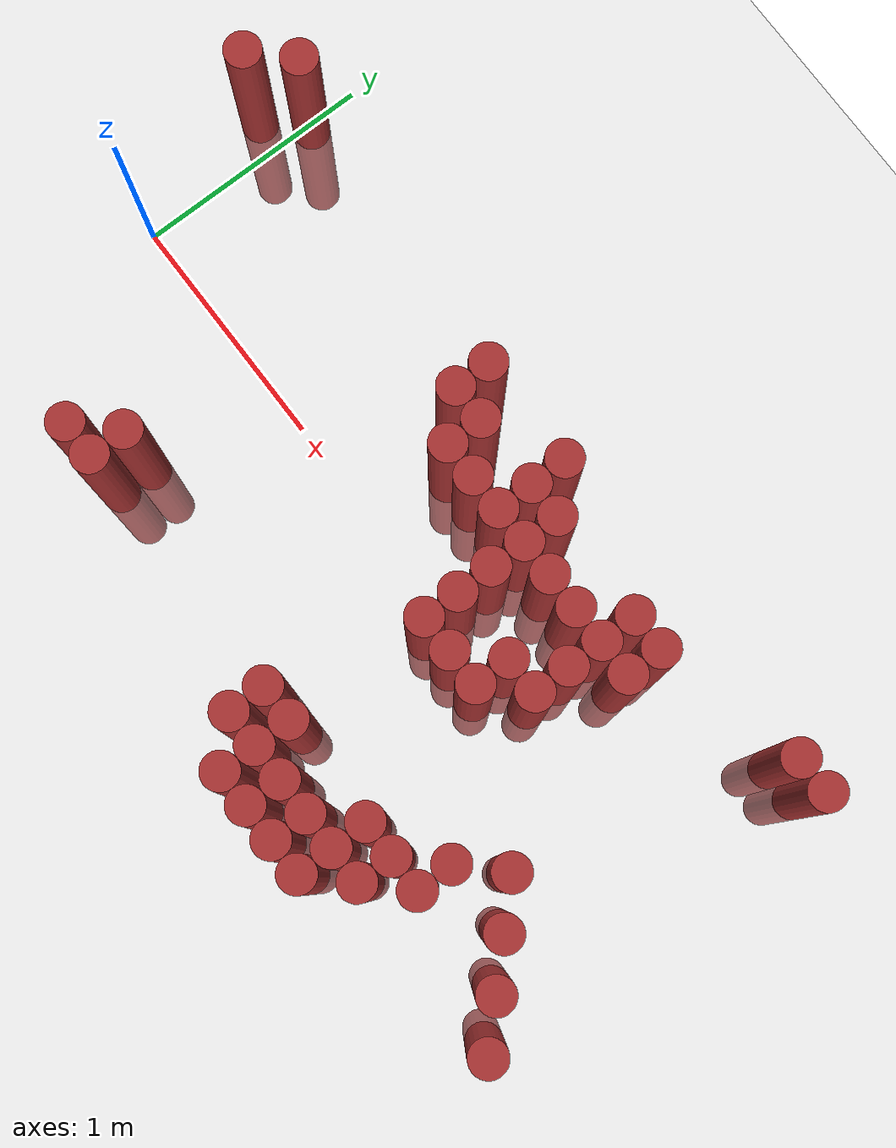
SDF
<sdf version="1.6">
 <world name="default">
  <model name="ground_plane">
   <static>1</static>
   <link name="link">
    <collision name="collision">
     <geometry><plane><normal>0 0 1</normal><size>100 100</size></plane></geometry>
     <surface><friction><ode><mu>100</mu><mu2>50</mu2></ode></friction></surface>
    </collision>
    <visual name="visual">
     <cast_shadows>0</cast_shadows>
     <geometry><plane><normal>0 0 1</normal><size>100 100</size></plane></geometry>
     <material>
      <script><uri>file://media/materials/scripts/gazebo.material</uri><name>Gazebo/Grey</name></script>
     </material>
    </visual>
   </link>
  </model>
  <model name="unit_cylinder_378">
   <static>1</static>
   <pose>-0.125000 0.625000 0.000000 0.000000 0.000000 0.000000</pose>
   <link name="link">
    <inertial>
     <mass>1</mass>
     <inertia><ixx>0.145833</ixx><ixy>0</ixy><ixz>0</ixz><iyy>0.145833</iyy><iyz>0</iyz><izz>0.125</izz></inertia>
    </inertial>
    <collision name="collision">
     <geometry><cylinder><radius>0.075000</radius><length>1.5</length></cylinder></geometry>
    </collision>
    <visual name="visual">
     <geometry><cylinder><radius>0.075000</radius><length>1.5</length></cylinder></geometry>
     <material>
      <ambient>0.648000 0.192000 0.192000 1</ambient>
      <diffuse>0.648000 0.192000 0.192000 1</diffuse>
     </material>
     <material>
      <script><name>Gazebo/Grey</name><uri>file://media/materials/scripts/gazebo.material</uri></script>
     </material>
    </visual>
   </link>
  </model>
  <model name="unit_cylinder_382">
   <static>1</static>
   <pose>0.025000 0.775000 0.000000 0.000000 0.000000 0.000000</pose>
   <link name="link">
    <inertial>
     <mass>1</mass>
     <inertia><ixx>0.145833</ixx><ixy>0</ixy><ixz>0</ixz><iyy>0.145833</iyy><iyz>0</iyz><izz>0.125</izz></inertia>
    </inertial>
    <collision name="collision">
     <geometry><cylinder><radius>0.075000</radius><length>1.5</length></cylinder></geometry>
    </collision>
    <visual name="visual">
     <geometry><cylinder><radius>0.075000</radius><length>1.5</length></cylinder></geometry>
     <material>
      <ambient>0.648000 0.192000 0.192000 1</ambient>
      <diffuse>0.648000 0.192000 0.192000 1</diffuse>
     </material>
     <material>
      <script><name>Gazebo/Grey</name><uri>file://media/materials/scripts/gazebo.material</uri></script>
     </material>
    </visual>
   </link>
  </model>
  <model name="unit_cylinder_386">
   <static>1</static>
   <pose>0.625000 -0.725000 0.000000 0.000000 0.000000 0.000000</pose>
   <link name="link">
    <inertial>
     <mass>1</mass>
     <inertia><ixx>0.145833</ixx><ixy>0</ixy><ixz>0</ixz><iyy>0.145833</iyy><iyz>0</iyz><izz>0.125</izz></inertia>
    </inertial>
    <collision name="collision">
     <geometry><cylinder><radius>0.075000</radius><length>1.5</length></cylinder></geometry>
    </collision>
    <visual name="visual">
     <geometry><cylinder><radius>0.075000</radius><length>1.5</length></cylinder></geometry>
     <material>
      <ambient>0.648000 0.192000 0.192000 1</ambient>
      <diffuse>0.648000 0.192000 0.192000 1</diffuse>
     </material>
     <material>
      <script><name>Gazebo/Grey</name><uri>file://media/materials/scripts/gazebo.material</uri></script>
     </material>
    </visual>
   </link>
  </model>
  <model name="unit_cylinder_387">
   <static>1</static>
   <pose>0.775000 -0.725000 0.000000 0.000000 0.000000 0.000000</pose>
   <link name="link">
    <inertial>
     <mass>1</mass>
     <inertia><ixx>0.145833</ixx><ixy>0</ixy><ixz>0</ixz><iyy>0.145833</iyy><iyz>0</iyz><izz>0.125</izz></inertia>
    </inertial>
    <collision name="collision">
     <geometry><cylinder><radius>0.075000</radius><length>1.5</length></cylinder></geometry>
    </collision>
    <visual name="visual">
     <geometry><cylinder><radius>0.075000</radius><length>1.5</length></cylinder></geometry>
     <material>
      <ambient>0.648000 0.192000 0.192000 1</ambient>
      <diffuse>0.648000 0.192000 0.192000 1</diffuse>
     </material>
     <material>
      <script><name>Gazebo/Grey</name><uri>file://media/materials/scripts/gazebo.material</uri></script>
     </material>
    </visual>
   </link>
  </model>
  <model name="unit_cylinder_388">
   <static>1</static>
   <pose>0.775000 -0.575000 0.000000 0.000000 0.000000 0.000000</pose>
   <link name="link">
    <inertial>
     <mass>1</mass>
     <inertia><ixx>0.145833</ixx><ixy>0</ixy><ixz>0</ixz><iyy>0.145833</iyy><iyz>0</iyz><izz>0.125</izz></inertia>
    </inertial>
    <collision name="collision">
     <geometry><cylinder><radius>0.075000</radius><length>1.5</length></cylinder></geometry>
    </collision>
    <visual name="visual">
     <geometry><cylinder><radius>0.075000</radius><length>1.5</length></cylinder></geometry>
     <material>
      <ambient>0.648000 0.192000 0.192000 1</ambient>
      <diffuse>0.648000 0.192000 0.192000 1</diffuse>
     </material>
     <material>
      <script><name>Gazebo/Grey</name><uri>file://media/materials/scripts/gazebo.material</uri></script>
     </material>
    </visual>
   </link>
  </model>
  <model name="unit_cylinder_401">
   <static>1</static>
   <pose>1.375000 0.475000 0.000000 0.000000 0.000000 0.000000</pose>
   <link name="link">
    <inertial>
     <mass>1</mass>
     <inertia><ixx>0.145833</ixx><ixy>0</ixy><ixz>0</ixz><iyy>0.145833</iyy><iyz>0</iyz><izz>0.125</izz></inertia>
    </inertial>
    <collision name="collision">
     <geometry><cylinder><radius>0.075000</radius><length>1.5</length></cylinder></geometry>
    </collision>
    <visual name="visual">
     <geometry><cylinder><radius>0.075000</radius><length>1.5</length></cylinder></geometry>
     <material>
      <ambient>0.648000 0.192000 0.192000 1</ambient>
      <diffuse>0.648000 0.192000 0.192000 1</diffuse>
     </material>
     <material>
      <script><name>Gazebo/Grey</name><uri>file://media/materials/scripts/gazebo.material</uri></script>
     </material>
    </visual>
   </link>
  </model>
  <model name="unit_cylinder_402">
   <static>1</static>
   <pose>1.375000 0.625000 0.000000 0.000000 0.000000 0.000000</pose>
   <link name="link">
    <inertial>
     <mass>1</mass>
     <inertia><ixx>0.145833</ixx><ixy>0</ixy><ixz>0</ixz><iyy>0.145833</iyy><iyz>0</iyz><izz>0.125</izz></inertia>
    </inertial>
    <collision name="collision">
     <geometry><cylinder><radius>0.075000</radius><length>1.5</length></cylinder></geometry>
    </collision>
    <visual name="visual">
     <geometry><cylinder><radius>0.075000</radius><length>1.5</length></cylinder></geometry>
     <material>
      <ambient>0.648000 0.192000 0.192000 1</ambient>
      <diffuse>0.648000 0.192000 0.192000 1</diffuse>
     </material>
     <material>
      <script><name>Gazebo/Grey</name><uri>file://media/materials/scripts/gazebo.material</uri></script>
     </material>
    </visual>
   </link>
  </model>
  <model name="unit_cylinder_408">
   <static>1</static>
   <pose>1.525000 0.325000 0.000000 0.000000 0.000000 0.000000</pose>
   <link name="link">
    <inertial>
     <mass>1</mass>
     <inertia><ixx>0.145833</ixx><ixy>0</ixy><ixz>0</ixz><iyy>0.145833</iyy><iyz>0</iyz><izz>0.125</izz></inertia>
    </inertial>
    <collision name="collision">
     <geometry><cylinder><radius>0.075000</radius><length>1.5</length></cylinder></geometry>
    </collision>
    <visual name="visual">
     <geometry><cylinder><radius>0.075000</radius><length>1.5</length></cylinder></geometry>
     <material>
      <ambient>0.648000 0.192000 0.192000 1</ambient>
      <diffuse>0.648000 0.192000 0.192000 1</diffuse>
     </material>
     <material>
      <script><name>Gazebo/Grey</name><uri>file://media/materials/scripts/gazebo.material</uri></script>
     </material>
    </visual>
   </link>
  </model>
  <model name="unit_cylinder_409">
   <static>1</static>
   <pose>1.525000 0.475000 0.000000 0.000000 0.000000 0.000000</pose>
   <link name="link">
    <inertial>
     <mass>1</mass>
     <inertia><ixx>0.145833</ixx><ixy>0</ixy><ixz>0</ixz><iyy>0.145833</iyy><iyz>0</iyz><izz>0.125</izz></inertia>
    </inertial>
    <collision name="collision">
     <geometry><cylinder><radius>0.075000</radius><length>1.5</length></cylinder></geometry>
    </collision>
    <visual name="visual">
     <geometry><cylinder><radius>0.075000</radius><length>1.5</length></cylinder></geometry>
     <material>
      <ambient>0.648000 0.192000 0.192000 1</ambient>
      <diffuse>0.648000 0.192000 0.192000 1</diffuse>
     </material>
     <material>
      <script><name>Gazebo/Grey</name><uri>file://media/materials/scripts/gazebo.material</uri></script>
     </material>
    </visual>
   </link>
  </model>
  <model name="unit_cylinder_414">
   <static>1</static>
   <pose>1.675000 0.325000 0.000000 0.000000 0.000000 0.000000</pose>
   <link name="link">
    <inertial>
     <mass>1</mass>
     <inertia><ixx>0.145833</ixx><ixy>0</ixy><ixz>0</ixz><iyy>0.145833</iyy><iyz>0</iyz><izz>0.125</izz></inertia>
    </inertial>
    <collision name="collision">
     <geometry><cylinder><radius>0.075000</radius><length>1.5</length></cylinder></geometry>
    </collision>
    <visual name="visual">
     <geometry><cylinder><radius>0.075000</radius><length>1.5</length></cylinder></geometry>
     <material>
      <ambient>0.648000 0.192000 0.192000 1</ambient>
      <diffuse>0.648000 0.192000 0.192000 1</diffuse>
     </material>
     <material>
      <script><name>Gazebo/Grey</name><uri>file://media/materials/scripts/gazebo.material</uri></script>
     </material>
    </visual>
   </link>
  </model>
  <model name="unit_cylinder_418">
   <static>1</static>
   <pose>1.825000 -0.875000 0.000000 0.000000 0.000000 0.000000</pose>
   <link name="link">
    <inertial>
     <mass>1</mass>
     <inertia><ixx>0.145833</ixx><ixy>0</ixy><ixz>0</ixz><iyy>0.145833</iyy><iyz>0</iyz><izz>0.125</izz></inertia>
    </inertial>
    <collision name="collision">
     <geometry><cylinder><radius>0.075000</radius><length>1.5</length></cylinder></geometry>
    </collision>
    <visual name="visual">
     <geometry><cylinder><radius>0.075000</radius><length>1.5</length></cylinder></geometry>
     <material>
      <ambient>0.648000 0.192000 0.192000 1</ambient>
      <diffuse>0.648000 0.192000 0.192000 1</diffuse>
     </material>
     <material>
      <script><name>Gazebo/Grey</name><uri>file://media/materials/scripts/gazebo.material</uri></script>
     </material>
    </visual>
   </link>
  </model>
  <model name="unit_cylinder_419">
   <static>1</static>
   <pose>1.825000 -0.725000 0.000000 0.000000 0.000000 0.000000</pose>
   <link name="link">
    <inertial>
     <mass>1</mass>
     <inertia><ixx>0.145833</ixx><ixy>0</ixy><ixz>0</ixz><iyy>0.145833</iyy><iyz>0</iyz><izz>0.125</izz></inertia>
    </inertial>
    <collision name="collision">
     <geometry><cylinder><radius>0.075000</radius><length>1.5</length></cylinder></geometry>
    </collision>
    <visual name="visual">
     <geometry><cylinder><radius>0.075000</radius><length>1.5</length></cylinder></geometry>
     <material>
      <ambient>0.648000 0.192000 0.192000 1</ambient>
      <diffuse>0.648000 0.192000 0.192000 1</diffuse>
     </material>
     <material>
      <script><name>Gazebo/Grey</name><uri>file://media/materials/scripts/gazebo.material</uri></script>
     </material>
    </visual>
   </link>
  </model>
  <model name="unit_cylinder_420">
   <static>1</static>
   <pose>1.825000 0.325000 0.000000 0.000000 0.000000 0.000000</pose>
   <link name="link">
    <inertial>
     <mass>1</mass>
     <inertia><ixx>0.145833</ixx><ixy>0</ixy><ixz>0</ixz><iyy>0.145833</iyy><iyz>0</iyz><izz>0.125</izz></inertia>
    </inertial>
    <collision name="collision">
     <geometry><cylinder><radius>0.075000</radius><length>1.5</length></cylinder></geometry>
    </collision>
    <visual name="visual">
     <geometry><cylinder><radius>0.075000</radius><length>1.5</length></cylinder></geometry>
     <material>
      <ambient>0.648000 0.192000 0.192000 1</ambient>
      <diffuse>0.648000 0.192000 0.192000 1</diffuse>
     </material>
     <material>
      <script><name>Gazebo/Grey</name><uri>file://media/materials/scripts/gazebo.material</uri></script>
     </material>
    </visual>
   </link>
  </model>
  <model name="unit_cylinder_421">
   <static>1</static>
   <pose>1.825000 0.475000 0.000000 0.000000 0.000000 0.000000</pose>
   <link name="link">
    <inertial>
     <mass>1</mass>
     <inertia><ixx>0.145833</ixx><ixy>0</ixy><ixz>0</ixz><iyy>0.145833</iyy><iyz>0</iyz><izz>0.125</izz></inertia>
    </inertial>
    <collision name="collision">
     <geometry><cylinder><radius>0.075000</radius><length>1.5</length></cylinder></geometry>
    </collision>
    <visual name="visual">
     <geometry><cylinder><radius>0.075000</radius><length>1.5</length></cylinder></geometry>
     <material>
      <ambient>0.648000 0.192000 0.192000 1</ambient>
      <diffuse>0.648000 0.192000 0.192000 1</diffuse>
     </material>
     <material>
      <script><name>Gazebo/Grey</name><uri>file://media/materials/scripts/gazebo.material</uri></script>
     </material>
    </visual>
   </link>
  </model>
  <model name="unit_cylinder_422">
   <static>1</static>
   <pose>1.825000 0.625000 0.000000 0.000000 0.000000 0.000000</pose>
   <link name="link">
    <inertial>
     <mass>1</mass>
     <inertia><ixx>0.145833</ixx><ixy>0</ixy><ixz>0</ixz><iyy>0.145833</iyy><iyz>0</iyz><izz>0.125</izz></inertia>
    </inertial>
    <collision name="collision">
     <geometry><cylinder><radius>0.075000</radius><length>1.5</length></cylinder></geometry>
    </collision>
    <visual name="visual">
     <geometry><cylinder><radius>0.075000</radius><length>1.5</length></cylinder></geometry>
     <material>
      <ambient>0.648000 0.192000 0.192000 1</ambient>
      <diffuse>0.648000 0.192000 0.192000 1</diffuse>
     </material>
     <material>
      <script><name>Gazebo/Grey</name><uri>file://media/materials/scripts/gazebo.material</uri></script>
     </material>
    </visual>
   </link>
  </model>
  <model name="unit_cylinder_426">
   <static>1</static>
   <pose>1.975000 -1.025000 0.000000 0.000000 0.000000 0.000000</pose>
   <link name="link">
    <inertial>
     <mass>1</mass>
     <inertia><ixx>0.145833</ixx><ixy>0</ixy><ixz>0</ixz><iyy>0.145833</iyy><iyz>0</iyz><izz>0.125</izz></inertia>
    </inertial>
    <collision name="collision">
     <geometry><cylinder><radius>0.075000</radius><length>1.5</length></cylinder></geometry>
    </collision>
    <visual name="visual">
     <geometry><cylinder><radius>0.075000</radius><length>1.5</length></cylinder></geometry>
     <material>
      <ambient>0.648000 0.192000 0.192000 1</ambient>
      <diffuse>0.648000 0.192000 0.192000 1</diffuse>
     </material>
     <material>
      <script><name>Gazebo/Grey</name><uri>file://media/materials/scripts/gazebo.material</uri></script>
     </material>
    </visual>
   </link>
  </model>
  <model name="unit_cylinder_427">
   <static>1</static>
   <pose>1.975000 -0.875000 0.000000 0.000000 0.000000 0.000000</pose>
   <link name="link">
    <inertial>
     <mass>1</mass>
     <inertia><ixx>0.145833</ixx><ixy>0</ixy><ixz>0</ixz><iyy>0.145833</iyy><iyz>0</iyz><izz>0.125</izz></inertia>
    </inertial>
    <collision name="collision">
     <geometry><cylinder><radius>0.075000</radius><length>1.5</length></cylinder></geometry>
    </collision>
    <visual name="visual">
     <geometry><cylinder><radius>0.075000</radius><length>1.5</length></cylinder></geometry>
     <material>
      <ambient>0.648000 0.192000 0.192000 1</ambient>
      <diffuse>0.648000 0.192000 0.192000 1</diffuse>
     </material>
     <material>
      <script><name>Gazebo/Grey</name><uri>file://media/materials/scripts/gazebo.material</uri></script>
     </material>
    </visual>
   </link>
  </model>
  <model name="unit_cylinder_428">
   <static>1</static>
   <pose>1.975000 -0.725000 0.000000 0.000000 0.000000 0.000000</pose>
   <link name="link">
    <inertial>
     <mass>1</mass>
     <inertia><ixx>0.145833</ixx><ixy>0</ixy><ixz>0</ixz><iyy>0.145833</iyy><iyz>0</iyz><izz>0.125</izz></inertia>
    </inertial>
    <collision name="collision">
     <geometry><cylinder><radius>0.075000</radius><length>1.5</length></cylinder></geometry>
    </collision>
    <visual name="visual">
     <geometry><cylinder><radius>0.075000</radius><length>1.5</length></cylinder></geometry>
     <material>
      <ambient>0.648000 0.192000 0.192000 1</ambient>
      <diffuse>0.648000 0.192000 0.192000 1</diffuse>
     </material>
     <material>
      <script><name>Gazebo/Grey</name><uri>file://media/materials/scripts/gazebo.material</uri></script>
     </material>
    </visual>
   </link>
  </model>
  <model name="unit_cylinder_429">
   <static>1</static>
   <pose>1.975000 -0.125000 0.000000 0.000000 0.000000 0.000000</pose>
   <link name="link">
    <inertial>
     <mass>1</mass>
     <inertia><ixx>0.145833</ixx><ixy>0</ixy><ixz>0</ixz><iyy>0.145833</iyy><iyz>0</iyz><izz>0.125</izz></inertia>
    </inertial>
    <collision name="collision">
     <geometry><cylinder><radius>0.075000</radius><length>1.5</length></cylinder></geometry>
    </collision>
    <visual name="visual">
     <geometry><cylinder><radius>0.075000</radius><length>1.5</length></cylinder></geometry>
     <material>
      <ambient>0.648000 0.192000 0.192000 1</ambient>
      <diffuse>0.648000 0.192000 0.192000 1</diffuse>
     </material>
     <material>
      <script><name>Gazebo/Grey</name><uri>file://media/materials/scripts/gazebo.material</uri></script>
     </material>
    </visual>
   </link>
  </model>
  <model name="unit_cylinder_430">
   <static>1</static>
   <pose>1.975000 0.025000 0.000000 0.000000 0.000000 0.000000</pose>
   <link name="link">
    <inertial>
     <mass>1</mass>
     <inertia><ixx>0.145833</ixx><ixy>0</ixy><ixz>0</ixz><iyy>0.145833</iyy><iyz>0</iyz><izz>0.125</izz></inertia>
    </inertial>
    <collision name="collision">
     <geometry><cylinder><radius>0.075000</radius><length>1.5</length></cylinder></geometry>
    </collision>
    <visual name="visual">
     <geometry><cylinder><radius>0.075000</radius><length>1.5</length></cylinder></geometry>
     <material>
      <ambient>0.648000 0.192000 0.192000 1</ambient>
      <diffuse>0.648000 0.192000 0.192000 1</diffuse>
     </material>
     <material>
      <script><name>Gazebo/Grey</name><uri>file://media/materials/scripts/gazebo.material</uri></script>
     </material>
    </visual>
   </link>
  </model>
  <model name="unit_cylinder_431">
   <static>1</static>
   <pose>1.975000 0.175000 0.000000 0.000000 0.000000 0.000000</pose>
   <link name="link">
    <inertial>
     <mass>1</mass>
     <inertia><ixx>0.145833</ixx><ixy>0</ixy><ixz>0</ixz><iyy>0.145833</iyy><iyz>0</iyz><izz>0.125</izz></inertia>
    </inertial>
    <collision name="collision">
     <geometry><cylinder><radius>0.075000</radius><length>1.5</length></cylinder></geometry>
    </collision>
    <visual name="visual">
     <geometry><cylinder><radius>0.075000</radius><length>1.5</length></cylinder></geometry>
     <material>
      <ambient>0.648000 0.192000 0.192000 1</ambient>
      <diffuse>0.648000 0.192000 0.192000 1</diffuse>
     </material>
     <material>
      <script><name>Gazebo/Grey</name><uri>file://media/materials/scripts/gazebo.material</uri></script>
     </material>
    </visual>
   </link>
  </model>
  <model name="unit_cylinder_432">
   <static>1</static>
   <pose>1.975000 0.325000 0.000000 0.000000 0.000000 0.000000</pose>
   <link name="link">
    <inertial>
     <mass>1</mass>
     <inertia><ixx>0.145833</ixx><ixy>0</ixy><ixz>0</ixz><iyy>0.145833</iyy><iyz>0</iyz><izz>0.125</izz></inertia>
    </inertial>
    <collision name="collision">
     <geometry><cylinder><radius>0.075000</radius><length>1.5</length></cylinder></geometry>
    </collision>
    <visual name="visual">
     <geometry><cylinder><radius>0.075000</radius><length>1.5</length></cylinder></geometry>
     <material>
      <ambient>0.648000 0.192000 0.192000 1</ambient>
      <diffuse>0.648000 0.192000 0.192000 1</diffuse>
     </material>
     <material>
      <script><name>Gazebo/Grey</name><uri>file://media/materials/scripts/gazebo.material</uri></script>
     </material>
    </visual>
   </link>
  </model>
  <model name="unit_cylinder_433">
   <static>1</static>
   <pose>1.975000 0.475000 0.000000 0.000000 0.000000 0.000000</pose>
   <link name="link">
    <inertial>
     <mass>1</mass>
     <inertia><ixx>0.145833</ixx><ixy>0</ixy><ixz>0</ixz><iyy>0.145833</iyy><iyz>0</iyz><izz>0.125</izz></inertia>
    </inertial>
    <collision name="collision">
     <geometry><cylinder><radius>0.075000</radius><length>1.5</length></cylinder></geometry>
    </collision>
    <visual name="visual">
     <geometry><cylinder><radius>0.075000</radius><length>1.5</length></cylinder></geometry>
     <material>
      <ambient>0.648000 0.192000 0.192000 1</ambient>
      <diffuse>0.648000 0.192000 0.192000 1</diffuse>
     </material>
     <material>
      <script><name>Gazebo/Grey</name><uri>file://media/materials/scripts/gazebo.material</uri></script>
     </material>
    </visual>
   </link>
  </model>
  <model name="unit_cylinder_434">
   <static>1</static>
   <pose>2.125000 -1.025000 0.000000 0.000000 0.000000 0.000000</pose>
   <link name="link">
    <inertial>
     <mass>1</mass>
     <inertia><ixx>0.145833</ixx><ixy>0</ixy><ixz>0</ixz><iyy>0.145833</iyy><iyz>0</iyz><izz>0.125</izz></inertia>
    </inertial>
    <collision name="collision">
     <geometry><cylinder><radius>0.075000</radius><length>1.5</length></cylinder></geometry>
    </collision>
    <visual name="visual">
     <geometry><cylinder><radius>0.075000</radius><length>1.5</length></cylinder></geometry>
     <material>
      <ambient>0.648000 0.192000 0.192000 1</ambient>
      <diffuse>0.648000 0.192000 0.192000 1</diffuse>
     </material>
     <material>
      <script><name>Gazebo/Grey</name><uri>file://media/materials/scripts/gazebo.material</uri></script>
     </material>
    </visual>
   </link>
  </model>
  <model name="unit_cylinder_435">
   <static>1</static>
   <pose>2.125000 -0.875000 0.000000 0.000000 0.000000 0.000000</pose>
   <link name="link">
    <inertial>
     <mass>1</mass>
     <inertia><ixx>0.145833</ixx><ixy>0</ixy><ixz>0</ixz><iyy>0.145833</iyy><iyz>0</iyz><izz>0.125</izz></inertia>
    </inertial>
    <collision name="collision">
     <geometry><cylinder><radius>0.075000</radius><length>1.5</length></cylinder></geometry>
    </collision>
    <visual name="visual">
     <geometry><cylinder><radius>0.075000</radius><length>1.5</length></cylinder></geometry>
     <material>
      <ambient>0.648000 0.192000 0.192000 1</ambient>
      <diffuse>0.648000 0.192000 0.192000 1</diffuse>
     </material>
     <material>
      <script><name>Gazebo/Grey</name><uri>file://media/materials/scripts/gazebo.material</uri></script>
     </material>
    </visual>
   </link>
  </model>
  <model name="unit_cylinder_436">
   <static>1</static>
   <pose>2.125000 -0.125000 0.000000 0.000000 0.000000 0.000000</pose>
   <link name="link">
    <inertial>
     <mass>1</mass>
     <inertia><ixx>0.145833</ixx><ixy>0</ixy><ixz>0</ixz><iyy>0.145833</iyy><iyz>0</iyz><izz>0.125</izz></inertia>
    </inertial>
    <collision name="collision">
     <geometry><cylinder><radius>0.075000</radius><length>1.5</length></cylinder></geometry>
    </collision>
    <visual name="visual">
     <geometry><cylinder><radius>0.075000</radius><length>1.5</length></cylinder></geometry>
     <material>
      <ambient>0.648000 0.192000 0.192000 1</ambient>
      <diffuse>0.648000 0.192000 0.192000 1</diffuse>
     </material>
     <material>
      <script><name>Gazebo/Grey</name><uri>file://media/materials/scripts/gazebo.material</uri></script>
     </material>
    </visual>
   </link>
  </model>
  <model name="unit_cylinder_437">
   <static>1</static>
   <pose>2.125000 0.325000 0.000000 0.000000 0.000000 0.000000</pose>
   <link name="link">
    <inertial>
     <mass>1</mass>
     <inertia><ixx>0.145833</ixx><ixy>0</ixy><ixz>0</ixz><iyy>0.145833</iyy><iyz>0</iyz><izz>0.125</izz></inertia>
    </inertial>
    <collision name="collision">
     <geometry><cylinder><radius>0.075000</radius><length>1.5</length></cylinder></geometry>
    </collision>
    <visual name="visual">
     <geometry><cylinder><radius>0.075000</radius><length>1.5</length></cylinder></geometry>
     <material>
      <ambient>0.648000 0.192000 0.192000 1</ambient>
      <diffuse>0.648000 0.192000 0.192000 1</diffuse>
     </material>
     <material>
      <script><name>Gazebo/Grey</name><uri>file://media/materials/scripts/gazebo.material</uri></script>
     </material>
    </visual>
   </link>
  </model>
  <model name="unit_cylinder_439">
   <static>1</static>
   <pose>2.275000 -1.025000 0.000000 0.000000 0.000000 0.000000</pose>
   <link name="link">
    <inertial>
     <mass>1</mass>
     <inertia><ixx>0.145833</ixx><ixy>0</ixy><ixz>0</ixz><iyy>0.145833</iyy><iyz>0</iyz><izz>0.125</izz></inertia>
    </inertial>
    <collision name="collision">
     <geometry><cylinder><radius>0.075000</radius><length>1.5</length></cylinder></geometry>
    </collision>
    <visual name="visual">
     <geometry><cylinder><radius>0.075000</radius><length>1.5</length></cylinder></geometry>
     <material>
      <ambient>0.648000 0.192000 0.192000 1</ambient>
      <diffuse>0.648000 0.192000 0.192000 1</diffuse>
     </material>
     <material>
      <script><name>Gazebo/Grey</name><uri>file://media/materials/scripts/gazebo.material</uri></script>
     </material>
    </visual>
   </link>
  </model>
  <model name="unit_cylinder_440">
   <static>1</static>
   <pose>2.275000 -0.875000 0.000000 0.000000 0.000000 0.000000</pose>
   <link name="link">
    <inertial>
     <mass>1</mass>
     <inertia><ixx>0.145833</ixx><ixy>0</ixy><ixz>0</ixz><iyy>0.145833</iyy><iyz>0</iyz><izz>0.125</izz></inertia>
    </inertial>
    <collision name="collision">
     <geometry><cylinder><radius>0.075000</radius><length>1.5</length></cylinder></geometry>
    </collision>
    <visual name="visual">
     <geometry><cylinder><radius>0.075000</radius><length>1.5</length></cylinder></geometry>
     <material>
      <ambient>0.648000 0.192000 0.192000 1</ambient>
      <diffuse>0.648000 0.192000 0.192000 1</diffuse>
     </material>
     <material>
      <script><name>Gazebo/Grey</name><uri>file://media/materials/scripts/gazebo.material</uri></script>
     </material>
    </visual>
   </link>
  </model>
  <model name="unit_cylinder_441">
   <static>1</static>
   <pose>2.275000 -0.125000 0.000000 0.000000 0.000000 0.000000</pose>
   <link name="link">
    <inertial>
     <mass>1</mass>
     <inertia><ixx>0.145833</ixx><ixy>0</ixy><ixz>0</ixz><iyy>0.145833</iyy><iyz>0</iyz><izz>0.125</izz></inertia>
    </inertial>
    <collision name="collision">
     <geometry><cylinder><radius>0.075000</radius><length>1.5</length></cylinder></geometry>
    </collision>
    <visual name="visual">
     <geometry><cylinder><radius>0.075000</radius><length>1.5</length></cylinder></geometry>
     <material>
      <ambient>0.648000 0.192000 0.192000 1</ambient>
      <diffuse>0.648000 0.192000 0.192000 1</diffuse>
     </material>
     <material>
      <script><name>Gazebo/Grey</name><uri>file://media/materials/scripts/gazebo.material</uri></script>
     </material>
    </visual>
   </link>
  </model>
  <model name="unit_cylinder_442">
   <static>1</static>
   <pose>2.275000 0.025000 0.000000 0.000000 0.000000 0.000000</pose>
   <link name="link">
    <inertial>
     <mass>1</mass>
     <inertia><ixx>0.145833</ixx><ixy>0</ixy><ixz>0</ixz><iyy>0.145833</iyy><iyz>0</iyz><izz>0.125</izz></inertia>
    </inertial>
    <collision name="collision">
     <geometry><cylinder><radius>0.075000</radius><length>1.5</length></cylinder></geometry>
    </collision>
    <visual name="visual">
     <geometry><cylinder><radius>0.075000</radius><length>1.5</length></cylinder></geometry>
     <material>
      <ambient>0.648000 0.192000 0.192000 1</ambient>
      <diffuse>0.648000 0.192000 0.192000 1</diffuse>
     </material>
     <material>
      <script><name>Gazebo/Grey</name><uri>file://media/materials/scripts/gazebo.material</uri></script>
     </material>
    </visual>
   </link>
  </model>
  <model name="unit_cylinder_443">
   <static>1</static>
   <pose>2.275000 0.325000 0.000000 0.000000 0.000000 0.000000</pose>
   <link name="link">
    <inertial>
     <mass>1</mass>
     <inertia><ixx>0.145833</ixx><ixy>0</ixy><ixz>0</ixz><iyy>0.145833</iyy><iyz>0</iyz><izz>0.125</izz></inertia>
    </inertial>
    <collision name="collision">
     <geometry><cylinder><radius>0.075000</radius><length>1.5</length></cylinder></geometry>
    </collision>
    <visual name="visual">
     <geometry><cylinder><radius>0.075000</radius><length>1.5</length></cylinder></geometry>
     <material>
      <ambient>0.648000 0.192000 0.192000 1</ambient>
      <diffuse>0.648000 0.192000 0.192000 1</diffuse>
     </material>
     <material>
      <script><name>Gazebo/Grey</name><uri>file://media/materials/scripts/gazebo.material</uri></script>
     </material>
    </visual>
   </link>
  </model>
  <model name="unit_cylinder_446">
   <static>1</static>
   <pose>2.425000 -1.025000 0.000000 0.000000 0.000000 0.000000</pose>
   <link name="link">
    <inertial>
     <mass>1</mass>
     <inertia><ixx>0.145833</ixx><ixy>0</ixy><ixz>0</ixz><iyy>0.145833</iyy><iyz>0</iyz><izz>0.125</izz></inertia>
    </inertial>
    <collision name="collision">
     <geometry><cylinder><radius>0.075000</radius><length>1.5</length></cylinder></geometry>
    </collision>
    <visual name="visual">
     <geometry><cylinder><radius>0.075000</radius><length>1.5</length></cylinder></geometry>
     <material>
      <ambient>0.648000 0.192000 0.192000 1</ambient>
      <diffuse>0.648000 0.192000 0.192000 1</diffuse>
     </material>
     <material>
      <script><name>Gazebo/Grey</name><uri>file://media/materials/scripts/gazebo.material</uri></script>
     </material>
    </visual>
   </link>
  </model>
  <model name="unit_cylinder_447">
   <static>1</static>
   <pose>2.425000 -0.875000 0.000000 0.000000 0.000000 0.000000</pose>
   <link name="link">
    <inertial>
     <mass>1</mass>
     <inertia><ixx>0.145833</ixx><ixy>0</ixy><ixz>0</ixz><iyy>0.145833</iyy><iyz>0</iyz><izz>0.125</izz></inertia>
    </inertial>
    <collision name="collision">
     <geometry><cylinder><radius>0.075000</radius><length>1.5</length></cylinder></geometry>
    </collision>
    <visual name="visual">
     <geometry><cylinder><radius>0.075000</radius><length>1.5</length></cylinder></geometry>
     <material>
      <ambient>0.648000 0.192000 0.192000 1</ambient>
      <diffuse>0.648000 0.192000 0.192000 1</diffuse>
     </material>
     <material>
      <script><name>Gazebo/Grey</name><uri>file://media/materials/scripts/gazebo.material</uri></script>
     </material>
    </visual>
   </link>
  </model>
  <model name="unit_cylinder_448">
   <static>1</static>
   <pose>2.425000 -0.725000 0.000000 0.000000 0.000000 0.000000</pose>
   <link name="link">
    <inertial>
     <mass>1</mass>
     <inertia><ixx>0.145833</ixx><ixy>0</ixy><ixz>0</ixz><iyy>0.145833</iyy><iyz>0</iyz><izz>0.125</izz></inertia>
    </inertial>
    <collision name="collision">
     <geometry><cylinder><radius>0.075000</radius><length>1.5</length></cylinder></geometry>
    </collision>
    <visual name="visual">
     <geometry><cylinder><radius>0.075000</radius><length>1.5</length></cylinder></geometry>
     <material>
      <ambient>0.648000 0.192000 0.192000 1</ambient>
      <diffuse>0.648000 0.192000 0.192000 1</diffuse>
     </material>
     <material>
      <script><name>Gazebo/Grey</name><uri>file://media/materials/scripts/gazebo.material</uri></script>
     </material>
    </visual>
   </link>
  </model>
  <model name="unit_cylinder_449">
   <static>1</static>
   <pose>2.425000 0.025000 0.000000 0.000000 0.000000 0.000000</pose>
   <link name="link">
    <inertial>
     <mass>1</mass>
     <inertia><ixx>0.145833</ixx><ixy>0</ixy><ixz>0</ixz><iyy>0.145833</iyy><iyz>0</iyz><izz>0.125</izz></inertia>
    </inertial>
    <collision name="collision">
     <geometry><cylinder><radius>0.075000</radius><length>1.5</length></cylinder></geometry>
    </collision>
    <visual name="visual">
     <geometry><cylinder><radius>0.075000</radius><length>1.5</length></cylinder></geometry>
     <material>
      <ambient>0.648000 0.192000 0.192000 1</ambient>
      <diffuse>0.648000 0.192000 0.192000 1</diffuse>
     </material>
     <material>
      <script><name>Gazebo/Grey</name><uri>file://media/materials/scripts/gazebo.material</uri></script>
     </material>
    </visual>
   </link>
  </model>
  <model name="unit_cylinder_450">
   <static>1</static>
   <pose>2.425000 0.175000 0.000000 0.000000 0.000000 0.000000</pose>
   <link name="link">
    <inertial>
     <mass>1</mass>
     <inertia><ixx>0.145833</ixx><ixy>0</ixy><ixz>0</ixz><iyy>0.145833</iyy><iyz>0</iyz><izz>0.125</izz></inertia>
    </inertial>
    <collision name="collision">
     <geometry><cylinder><radius>0.075000</radius><length>1.5</length></cylinder></geometry>
    </collision>
    <visual name="visual">
     <geometry><cylinder><radius>0.075000</radius><length>1.5</length></cylinder></geometry>
     <material>
      <ambient>0.648000 0.192000 0.192000 1</ambient>
      <diffuse>0.648000 0.192000 0.192000 1</diffuse>
     </material>
     <material>
      <script><name>Gazebo/Grey</name><uri>file://media/materials/scripts/gazebo.material</uri></script>
     </material>
    </visual>
   </link>
  </model>
  <model name="unit_cylinder_451">
   <static>1</static>
   <pose>2.425000 0.325000 0.000000 0.000000 0.000000 0.000000</pose>
   <link name="link">
    <inertial>
     <mass>1</mass>
     <inertia><ixx>0.145833</ixx><ixy>0</ixy><ixz>0</ixz><iyy>0.145833</iyy><iyz>0</iyz><izz>0.125</izz></inertia>
    </inertial>
    <collision name="collision">
     <geometry><cylinder><radius>0.075000</radius><length>1.5</length></cylinder></geometry>
    </collision>
    <visual name="visual">
     <geometry><cylinder><radius>0.075000</radius><length>1.5</length></cylinder></geometry>
     <material>
      <ambient>0.648000 0.192000 0.192000 1</ambient>
      <diffuse>0.648000 0.192000 0.192000 1</diffuse>
     </material>
     <material>
      <script><name>Gazebo/Grey</name><uri>file://media/materials/scripts/gazebo.material</uri></script>
     </material>
    </visual>
   </link>
  </model>
  <model name="unit_cylinder_452">
   <static>1</static>
   <pose>2.425000 0.475000 0.000000 0.000000 0.000000 0.000000</pose>
   <link name="link">
    <inertial>
     <mass>1</mass>
     <inertia><ixx>0.145833</ixx><ixy>0</ixy><ixz>0</ixz><iyy>0.145833</iyy><iyz>0</iyz><izz>0.125</izz></inertia>
    </inertial>
    <collision name="collision">
     <geometry><cylinder><radius>0.075000</radius><length>1.5</length></cylinder></geometry>
    </collision>
    <visual name="visual">
     <geometry><cylinder><radius>0.075000</radius><length>1.5</length></cylinder></geometry>
     <material>
      <ambient>0.648000 0.192000 0.192000 1</ambient>
      <diffuse>0.648000 0.192000 0.192000 1</diffuse>
     </material>
     <material>
      <script><name>Gazebo/Grey</name><uri>file://media/materials/scripts/gazebo.material</uri></script>
     </material>
    </visual>
   </link>
  </model>
  <model name="unit_cylinder_457">
   <static>1</static>
   <pose>2.575000 -0.875000 0.000000 0.000000 0.000000 0.000000</pose>
   <link name="link">
    <inertial>
     <mass>1</mass>
     <inertia><ixx>0.145833</ixx><ixy>0</ixy><ixz>0</ixz><iyy>0.145833</iyy><iyz>0</iyz><izz>0.125</izz></inertia>
    </inertial>
    <collision name="collision">
     <geometry><cylinder><radius>0.075000</radius><length>1.5</length></cylinder></geometry>
    </collision>
    <visual name="visual">
     <geometry><cylinder><radius>0.075000</radius><length>1.5</length></cylinder></geometry>
     <material>
      <ambient>0.648000 0.192000 0.192000 1</ambient>
      <diffuse>0.648000 0.192000 0.192000 1</diffuse>
     </material>
     <material>
      <script><name>Gazebo/Grey</name><uri>file://media/materials/scripts/gazebo.material</uri></script>
     </material>
    </visual>
   </link>
  </model>
  <model name="unit_cylinder_458">
   <static>1</static>
   <pose>2.575000 -0.725000 0.000000 0.000000 0.000000 0.000000</pose>
   <link name="link">
    <inertial>
     <mass>1</mass>
     <inertia><ixx>0.145833</ixx><ixy>0</ixy><ixz>0</ixz><iyy>0.145833</iyy><iyz>0</iyz><izz>0.125</izz></inertia>
    </inertial>
    <collision name="collision">
     <geometry><cylinder><radius>0.075000</radius><length>1.5</length></cylinder></geometry>
    </collision>
    <visual name="visual">
     <geometry><cylinder><radius>0.075000</radius><length>1.5</length></cylinder></geometry>
     <material>
      <ambient>0.648000 0.192000 0.192000 1</ambient>
      <diffuse>0.648000 0.192000 0.192000 1</diffuse>
     </material>
     <material>
      <script><name>Gazebo/Grey</name><uri>file://media/materials/scripts/gazebo.material</uri></script>
     </material>
    </visual>
   </link>
  </model>
  <model name="unit_cylinder_459">
   <static>1</static>
   <pose>2.575000 0.325000 0.000000 0.000000 0.000000 0.000000</pose>
   <link name="link">
    <inertial>
     <mass>1</mass>
     <inertia><ixx>0.145833</ixx><ixy>0</ixy><ixz>0</ixz><iyy>0.145833</iyy><iyz>0</iyz><izz>0.125</izz></inertia>
    </inertial>
    <collision name="collision">
     <geometry><cylinder><radius>0.075000</radius><length>1.5</length></cylinder></geometry>
    </collision>
    <visual name="visual">
     <geometry><cylinder><radius>0.075000</radius><length>1.5</length></cylinder></geometry>
     <material>
      <ambient>0.648000 0.192000 0.192000 1</ambient>
      <diffuse>0.648000 0.192000 0.192000 1</diffuse>
     </material>
     <material>
      <script><name>Gazebo/Grey</name><uri>file://media/materials/scripts/gazebo.material</uri></script>
     </material>
    </visual>
   </link>
  </model>
  <model name="unit_cylinder_460">
   <static>1</static>
   <pose>2.575000 0.475000 0.000000 0.000000 0.000000 0.000000</pose>
   <link name="link">
    <inertial>
     <mass>1</mass>
     <inertia><ixx>0.145833</ixx><ixy>0</ixy><ixz>0</ixz><iyy>0.145833</iyy><iyz>0</iyz><izz>0.125</izz></inertia>
    </inertial>
    <collision name="collision">
     <geometry><cylinder><radius>0.075000</radius><length>1.5</length></cylinder></geometry>
    </collision>
    <visual name="visual">
     <geometry><cylinder><radius>0.075000</radius><length>1.5</length></cylinder></geometry>
     <material>
      <ambient>0.648000 0.192000 0.192000 1</ambient>
      <diffuse>0.648000 0.192000 0.192000 1</diffuse>
     </material>
     <material>
      <script><name>Gazebo/Grey</name><uri>file://media/materials/scripts/gazebo.material</uri></script>
     </material>
    </visual>
   </link>
  </model>
  <model name="unit_cylinder_464">
   <static>1</static>
   <pose>2.725000 -0.725000 0.000000 0.000000 0.000000 0.000000</pose>
   <link name="link">
    <inertial>
     <mass>1</mass>
     <inertia><ixx>0.145833</ixx><ixy>0</ixy><ixz>0</ixz><iyy>0.145833</iyy><iyz>0</iyz><izz>0.125</izz></inertia>
    </inertial>
    <collision name="collision">
     <geometry><cylinder><radius>0.075000</radius><length>1.5</length></cylinder></geometry>
    </collision>
    <visual name="visual">
     <geometry><cylinder><radius>0.075000</radius><length>1.5</length></cylinder></geometry>
     <material>
      <ambient>0.648000 0.192000 0.192000 1</ambient>
      <diffuse>0.648000 0.192000 0.192000 1</diffuse>
     </material>
     <material>
      <script><name>Gazebo/Grey</name><uri>file://media/materials/scripts/gazebo.material</uri></script>
     </material>
    </visual>
   </link>
  </model>
  <model name="unit_cylinder_465">
   <static>1</static>
   <pose>2.725000 -0.575000 0.000000 0.000000 0.000000 0.000000</pose>
   <link name="link">
    <inertial>
     <mass>1</mass>
     <inertia><ixx>0.145833</ixx><ixy>0</ixy><ixz>0</ixz><iyy>0.145833</iyy><iyz>0</iyz><izz>0.125</izz></inertia>
    </inertial>
    <collision name="collision">
     <geometry><cylinder><radius>0.075000</radius><length>1.5</length></cylinder></geometry>
    </collision>
    <visual name="visual">
     <geometry><cylinder><radius>0.075000</radius><length>1.5</length></cylinder></geometry>
     <material>
      <ambient>0.648000 0.192000 0.192000 1</ambient>
      <diffuse>0.648000 0.192000 0.192000 1</diffuse>
     </material>
     <material>
      <script><name>Gazebo/Grey</name><uri>file://media/materials/scripts/gazebo.material</uri></script>
     </material>
    </visual>
   </link>
  </model>
  <model name="unit_cylinder_469">
   <static>1</static>
   <pose>2.875000 -0.425000 0.000000 0.000000 0.000000 0.000000</pose>
   <link name="link">
    <inertial>
     <mass>1</mass>
     <inertia><ixx>0.145833</ixx><ixy>0</ixy><ixz>0</ixz><iyy>0.145833</iyy><iyz>0</iyz><izz>0.125</izz></inertia>
    </inertial>
    <collision name="collision">
     <geometry><cylinder><radius>0.075000</radius><length>1.5</length></cylinder></geometry>
    </collision>
    <visual name="visual">
     <geometry><cylinder><radius>0.075000</radius><length>1.5</length></cylinder></geometry>
     <material>
      <ambient>0.648000 0.192000 0.192000 1</ambient>
      <diffuse>0.648000 0.192000 0.192000 1</diffuse>
     </material>
     <material>
      <script><name>Gazebo/Grey</name><uri>file://media/materials/scripts/gazebo.material</uri></script>
     </material>
    </visual>
   </link>
  </model>
  <model name="unit_cylinder_471">
   <static>1</static>
   <pose>3.025000 -0.575000 0.000000 0.000000 0.000000 0.000000</pose>
   <link name="link">
    <inertial>
     <mass>1</mass>
     <inertia><ixx>0.145833</ixx><ixy>0</ixy><ixz>0</ixz><iyy>0.145833</iyy><iyz>0</iyz><izz>0.125</izz></inertia>
    </inertial>
    <collision name="collision">
     <geometry><cylinder><radius>0.075000</radius><length>1.5</length></cylinder></geometry>
    </collision>
    <visual name="visual">
     <geometry><cylinder><radius>0.075000</radius><length>1.5</length></cylinder></geometry>
     <material>
      <ambient>0.648000 0.192000 0.192000 1</ambient>
      <diffuse>0.648000 0.192000 0.192000 1</diffuse>
     </material>
     <material>
      <script><name>Gazebo/Grey</name><uri>file://media/materials/scripts/gazebo.material</uri></script>
     </material>
    </visual>
   </link>
  </model>
  <model name="unit_cylinder_472">
   <static>1</static>
   <pose>3.175000 -0.725000 0.000000 0.000000 0.000000 0.000000</pose>
   <link name="link">
    <inertial>
     <mass>1</mass>
     <inertia><ixx>0.145833</ixx><ixy>0</ixy><ixz>0</ixz><iyy>0.145833</iyy><iyz>0</iyz><izz>0.125</izz></inertia>
    </inertial>
    <collision name="collision">
     <geometry><cylinder><radius>0.075000</radius><length>1.5</length></cylinder></geometry>
    </collision>
    <visual name="visual">
     <geometry><cylinder><radius>0.075000</radius><length>1.5</length></cylinder></geometry>
     <material>
      <ambient>0.648000 0.192000 0.192000 1</ambient>
      <diffuse>0.648000 0.192000 0.192000 1</diffuse>
     </material>
     <material>
      <script><name>Gazebo/Grey</name><uri>file://media/materials/scripts/gazebo.material</uri></script>
     </material>
    </visual>
   </link>
  </model>
  <model name="unit_cylinder_473">
   <static>1</static>
   <pose>3.175000 0.625000 0.000000 0.000000 0.000000 0.000000</pose>
   <link name="link">
    <inertial>
     <mass>1</mass>
     <inertia><ixx>0.145833</ixx><ixy>0</ixy><ixz>0</ixz><iyy>0.145833</iyy><iyz>0</iyz><izz>0.125</izz></inertia>
    </inertial>
    <collision name="collision">
     <geometry><cylinder><radius>0.075000</radius><length>1.5</length></cylinder></geometry>
    </collision>
    <visual name="visual">
     <geometry><cylinder><radius>0.075000</radius><length>1.5</length></cylinder></geometry>
     <material>
      <ambient>0.648000 0.192000 0.192000 1</ambient>
      <diffuse>0.648000 0.192000 0.192000 1</diffuse>
     </material>
     <material>
      <script><name>Gazebo/Grey</name><uri>file://media/materials/scripts/gazebo.material</uri></script>
     </material>
    </visual>
   </link>
  </model>
  <model name="unit_cylinder_476">
   <static>1</static>
   <pose>3.325000 -0.875000 0.000000 0.000000 0.000000 0.000000</pose>
   <link name="link">
    <inertial>
     <mass>1</mass>
     <inertia><ixx>0.145833</ixx><ixy>0</ixy><ixz>0</ixz><iyy>0.145833</iyy><iyz>0</iyz><izz>0.125</izz></inertia>
    </inertial>
    <collision name="collision">
     <geometry><cylinder><radius>0.075000</radius><length>1.5</length></cylinder></geometry>
    </collision>
    <visual name="visual">
     <geometry><cylinder><radius>0.075000</radius><length>1.5</length></cylinder></geometry>
     <material>
      <ambient>0.648000 0.192000 0.192000 1</ambient>
      <diffuse>0.648000 0.192000 0.192000 1</diffuse>
     </material>
     <material>
      <script><name>Gazebo/Grey</name><uri>file://media/materials/scripts/gazebo.material</uri></script>
     </material>
    </visual>
   </link>
  </model>
  <model name="unit_cylinder_477">
   <static>1</static>
   <pose>3.325000 0.625000 0.000000 0.000000 0.000000 0.000000</pose>
   <link name="link">
    <inertial>
     <mass>1</mass>
     <inertia><ixx>0.145833</ixx><ixy>0</ixy><ixz>0</ixz><iyy>0.145833</iyy><iyz>0</iyz><izz>0.125</izz></inertia>
    </inertial>
    <collision name="collision">
     <geometry><cylinder><radius>0.075000</radius><length>1.5</length></cylinder></geometry>
    </collision>
    <visual name="visual">
     <geometry><cylinder><radius>0.075000</radius><length>1.5</length></cylinder></geometry>
     <material>
      <ambient>0.648000 0.192000 0.192000 1</ambient>
      <diffuse>0.648000 0.192000 0.192000 1</diffuse>
     </material>
     <material>
      <script><name>Gazebo/Grey</name><uri>file://media/materials/scripts/gazebo.material</uri></script>
     </material>
    </visual>
   </link>
  </model>
 </world>
</sdf>
